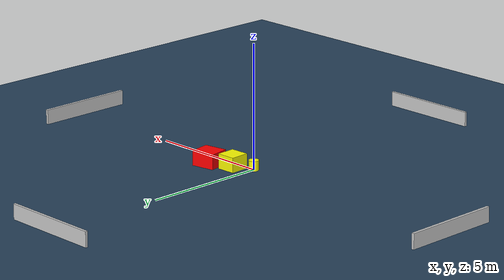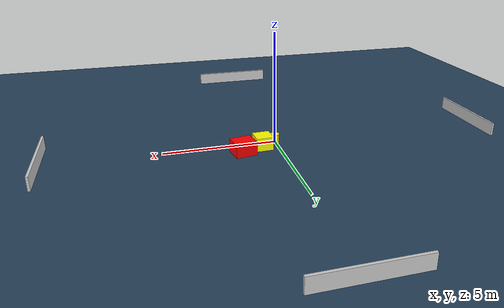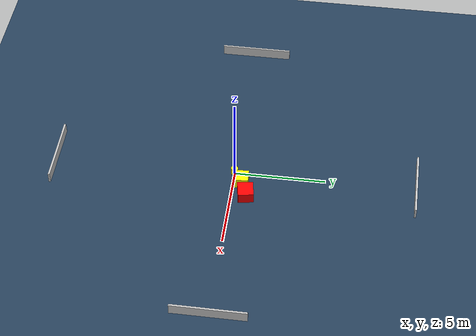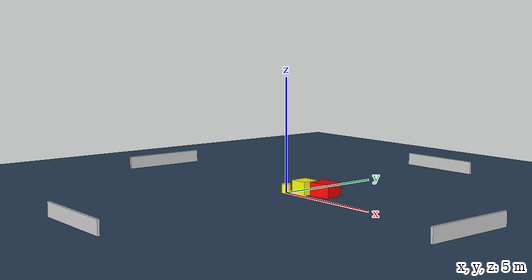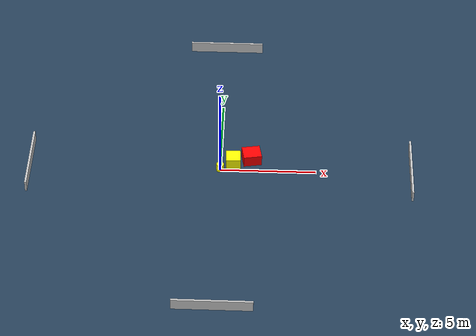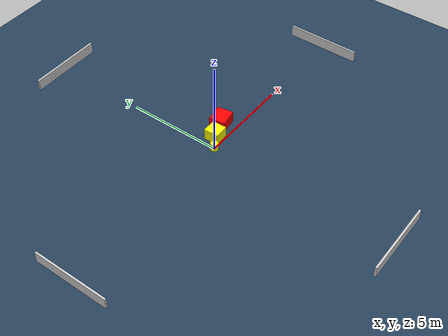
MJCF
<?xml version="1.0" ?>
<mujoco model="generated_environment">
  <option timestep="0.01" integrator="RK4" cone="elliptic"/>
  <default>
    <geom density="1"/>
  </default>
  <asset>
    <texture builtin="gradient" height="3072" name="skybox" rgb1="0.3 0.5 0.7" rgb2="0 0 0" type="skybox" width="512"/>
    <texture builtin="checker" height="300" name="groundplane" rgb1="0.2 0.3 0.4" rgb2="0.1 0.2 0.3" type="2d" width="300"/>
    <material name="groundplane" reflectance="0.2" texrepeat="5 5" texture="groundplane"/>
  </asset>
  <worldbody>
    <light dir="0 0 -1" directional="true" pos="0 0 1.5"/>
    <geom condim="3" friction="0.5 0.005 0.001" material="groundplane" name="floor" pos="0 0 0" size="0 0 0.05" type="plane"/>
    <body name="walls">
      <geom name="wall_1" condim="4" pos="-10.0 0.0 0.3" rgba="0.800000011920929 0.800000011920929 0.800000011920929 1.0" size="0.05 2.0 0.3" type="box"/>
      <geom name="wall_2" condim="4" pos="10.0 0.0 0.3" rgba="0.800000011920929 0.800000011920929 0.800000011920929 1.0" size="0.05 2.0 0.3" type="box"/>
      <geom name="wall_3" condim="4" pos="0.0 -10.0 0.3" rgba="0.800000011920929 0.800000011920929 0.800000011920929 1.0" size="2.0 0.05 0.3" type="box"/>
      <geom name="wall_4" condim="4" pos="0.0 10.0 0.3" rgba="0.800000011920929 0.800000011920929 0.800000011920929 1.0" size="2.0 0.05 0.3" type="box"/>
    </body>
    <body name="robot">
      <joint name="joint_x" type="slide" pos="0 0 0" axis="1 0 0"/>
      <joint name="joint_y" type="slide" pos="0 0 0" axis="0 1 0"/>
      <geom name="robot" type="cylinder" pos="0.0 0.0 0.2" size="0.2 0.2 0.0" mass="5.0" friction="1.0 0.005 0.0001" condim="4" rgba="1.0 1.0 0.0 1.0"/>
    </body>
    <body name="obstacle_1_movable">
      <geom name="obstacle_1_movable" condim="4" pos="0.6797455507467308 0.4621958043283081 0.3" euler="0 0 92.09775052024139" friction="0.0 0.005 0.001" rgba="1.0 1.0 0.0 1.0" size="0.3848511822146984 0.3819138086837295 0.3" type="box" mass="0.1"/>
      <joint type="free"/>
    </body>
    <body name="obstacle_2_static">
      <geom name="obstacle_2_static" condim="4" pos="1.6312671383298885 0.8051730068202602 0.3" euler="0 0 189.97110749010233" friction="0.0 0.005 0.001" rgba="1.0 0.0 0.0 1.0" size="0.47652818917011047 0.4275729100985719 0.3" type="box"/>
    </body>
  </worldbody>
  <actuator>
    <motor name="actuator_x" joint="joint_x" gear="1" ctrlrange="-1 1"/>
    <motor name="actuator_y" joint="joint_y" gear="1" ctrlrange="-1 1"/>
  </actuator>
</mujoco>
